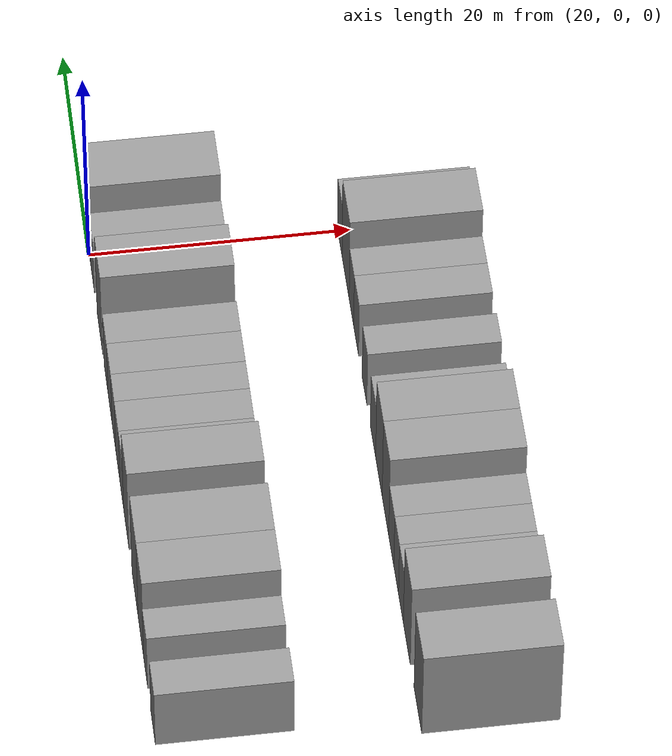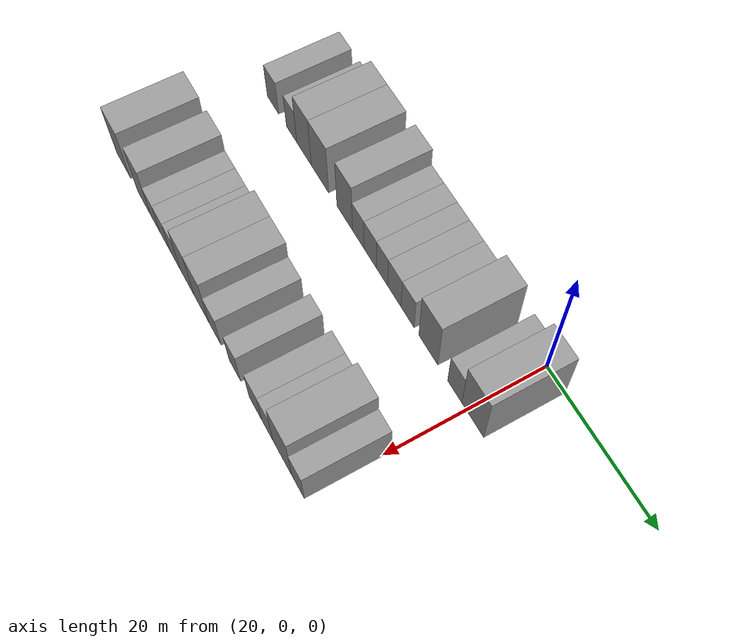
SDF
<sdf version="1.6">
 <world name="default">
  <model name="building_39">
   <static>1</static>
   <pose>25.0000 -44.3011 0 0.000000 0.000000 0.000000</pose>
   <link name="link">
    <pose>0 0 3.00 0 0 0</pose>
    <collision name="collision"><geometry><box><size>10.0000 2.9793 6.0000</size></box></geometry></collision>
    <visual name="visual">
     <cast_shadows>0</cast_shadows>
     <geometry><box><size>10.0000 2.9793 6.0000</size></box></geometry>
     <material>
      <script>
       <uri>model://grey_wall/materials/scripts</uri>
       <uri>model://grey_wall/materials/textures</uri>
       <name>vrc/grey_wall</name>
      </script>
     </material>
    </visual>
   </link>
  </model>
  <model name="building_40">
   <static>1</static>
   <pose>25.0000 -39.4788 0 0.000000 0.000000 0.000000</pose>
   <link name="link">
    <pose>0 0 3.00 0 0 0</pose>
    <collision name="collision"><geometry><box><size>10.0000 2.6652 6.0000</size></box></geometry></collision>
    <visual name="visual">
     <cast_shadows>0</cast_shadows>
     <geometry><box><size>10.0000 2.6652 6.0000</size></box></geometry>
     <material>
      <script>
       <uri>model://grey_wall/materials/scripts</uri>
       <uri>model://grey_wall/materials/textures</uri>
       <name>vrc/grey_wall</name>
      </script>
     </material>
    </visual>
   </link>
  </model>
  <model name="building_41">
   <static>1</static>
   <pose>25.0000 -36.3072 0 0.000000 0.000000 0.000000</pose>
   <link name="link">
    <pose>0 0 4.50 0 0 0</pose>
    <collision name="collision"><geometry><box><size>10.0000 3.6781 9.0000</size></box></geometry></collision>
    <visual name="visual">
     <cast_shadows>0</cast_shadows>
     <geometry><box><size>10.0000 3.6781 9.0000</size></box></geometry>
     <material>
      <script>
       <uri>model://grey_wall/materials/scripts</uri>
       <uri>model://grey_wall/materials/textures</uri>
       <name>vrc/grey_wall</name>
      </script>
     </material>
    </visual>
   </link>
  </model>
  <model name="building_42">
   <static>1</static>
   <pose>25.0000 -32.3538 0 0.000000 0.000000 0.000000</pose>
   <link name="link">
    <pose>0 0 4.50 0 0 0</pose>
    <collision name="collision"><geometry><box><size>10.0000 4.2288 9.0000</size></box></geometry></collision>
    <visual name="visual">
     <cast_shadows>0</cast_shadows>
     <geometry><box><size>10.0000 4.2288 9.0000</size></box></geometry>
     <material>
      <script>
       <uri>model://grey_wall/materials/scripts</uri>
       <uri>model://grey_wall/materials/textures</uri>
       <name>vrc/grey_wall</name>
      </script>
     </material>
    </visual>
   </link>
  </model>
  <model name="building_43">
   <static>1</static>
   <pose>25.0000 -26.3976 0 0.000000 0.000000 0.000000</pose>
   <link name="link">
    <pose>0 0 4.50 0 0 0</pose>
    <collision name="collision"><geometry><box><size>10.0000 3.6835 9.0000</size></box></geometry></collision>
    <visual name="visual">
     <cast_shadows>0</cast_shadows>
     <geometry><box><size>10.0000 3.6835 9.0000</size></box></geometry>
     <material>
      <script>
       <uri>model://grey_wall/materials/scripts</uri>
       <uri>model://grey_wall/materials/textures</uri>
       <name>vrc/grey_wall</name>
      </script>
     </material>
    </visual>
   </link>
  </model>
  <model name="building_44">
   <static>1</static>
   <pose>25.0000 -23.2192 0 0.000000 0.000000 0.000000</pose>
   <link name="link">
    <pose>0 0 3.00 0 0 0</pose>
    <collision name="collision"><geometry><box><size>10.0000 2.6733 6.0000</size></box></geometry></collision>
    <visual name="visual">
     <cast_shadows>0</cast_shadows>
     <geometry><box><size>10.0000 2.6733 6.0000</size></box></geometry>
     <material>
      <script>
       <uri>model://grey_wall/materials/scripts</uri>
       <uri>model://grey_wall/materials/textures</uri>
       <name>vrc/grey_wall</name>
      </script>
     </material>
    </visual>
   </link>
  </model>
  <model name="building_45">
   <static>1</static>
   <pose>25.0000 -20.4922 0 0.000000 0.000000 0.000000</pose>
   <link name="link">
    <pose>0 0 3.00 0 0 0</pose>
    <collision name="collision"><geometry><box><size>10.0000 2.7807 6.0000</size></box></geometry></collision>
    <visual name="visual">
     <cast_shadows>0</cast_shadows>
     <geometry><box><size>10.0000 2.7807 6.0000</size></box></geometry>
     <material>
      <script>
       <uri>model://grey_wall/materials/scripts</uri>
       <uri>model://grey_wall/materials/textures</uri>
       <name>vrc/grey_wall</name>
      </script>
     </material>
    </visual>
   </link>
  </model>
  <model name="building_46">
   <static>1</static>
   <pose>25.0000 -17.8144 0 0.000000 0.000000 0.000000</pose>
   <link name="link">
    <pose>0 0 3.00 0 0 0</pose>
    <collision name="collision"><geometry><box><size>10.0000 2.5750 6.0000</size></box></geometry></collision>
    <visual name="visual">
     <cast_shadows>0</cast_shadows>
     <geometry><box><size>10.0000 2.5750 6.0000</size></box></geometry>
     <material>
      <script>
       <uri>model://grey_wall/materials/scripts</uri>
       <uri>model://grey_wall/materials/textures</uri>
       <name>vrc/grey_wall</name>
      </script>
     </material>
    </visual>
   </link>
  </model>
  <model name="building_47">
   <static>1</static>
   <pose>25.0000 -15.0738 0 0.000000 0.000000 0.000000</pose>
   <link name="link">
    <pose>0 0 3.00 0 0 0</pose>
    <collision name="collision"><geometry><box><size>10.0000 2.9062 6.0000</size></box></geometry></collision>
    <visual name="visual">
     <cast_shadows>0</cast_shadows>
     <geometry><box><size>10.0000 2.9062 6.0000</size></box></geometry>
     <material>
      <script>
       <uri>model://grey_wall/materials/scripts</uri>
       <uri>model://grey_wall/materials/textures</uri>
       <name>vrc/grey_wall</name>
      </script>
     </material>
    </visual>
   </link>
  </model>
  <model name="building_48">
   <static>1</static>
   <pose>25.0000 -12.2017 0 0.000000 0.000000 0.000000</pose>
   <link name="link">
    <pose>0 0 3.00 0 0 0</pose>
    <collision name="collision"><geometry><box><size>10.0000 2.8381 6.0000</size></box></geometry></collision>
    <visual name="visual">
     <cast_shadows>0</cast_shadows>
     <geometry><box><size>10.0000 2.8381 6.0000</size></box></geometry>
     <material>
      <script>
       <uri>model://grey_wall/materials/scripts</uri>
       <uri>model://grey_wall/materials/textures</uri>
       <name>vrc/grey_wall</name>
      </script>
     </material>
    </visual>
   </link>
  </model>
  <model name="building_49">
   <static>1</static>
   <pose>25.0000 -7.7867 0 0.000000 0.000000 0.000000</pose>
   <link name="link">
    <pose>0 0 4.50 0 0 0</pose>
    <collision name="collision"><geometry><box><size>10.0000 3.9918 9.0000</size></box></geometry></collision>
    <visual name="visual">
     <cast_shadows>0</cast_shadows>
     <geometry><box><size>10.0000 3.9918 9.0000</size></box></geometry>
     <material>
      <script>
       <uri>model://grey_wall/materials/scripts</uri>
       <uri>model://grey_wall/materials/textures</uri>
       <name>vrc/grey_wall</name>
      </script>
     </material>
    </visual>
   </link>
  </model>
  <model name="building_50">
   <static>1</static>
   <pose>25.0000 -2.3718 0 0.000000 0.000000 0.000000</pose>
   <link name="link">
    <pose>0 0 3.00 0 0 0</pose>
    <collision name="collision"><geometry><box><size>10.0000 2.8381 6.0000</size></box></geometry></collision>
    <visual name="visual">
     <cast_shadows>0</cast_shadows>
     <geometry><box><size>10.0000 2.8381 6.0000</size></box></geometry>
     <material>
      <script>
       <uri>model://grey_wall/materials/scripts</uri>
       <uri>model://grey_wall/materials/textures</uri>
       <name>vrc/grey_wall</name>
      </script>
     </material>
    </visual>
   </link>
  </model>
  <model name="building_51">
   <static>1</static>
   <pose>25.0000 1.2269 0 0.000000 0.000000 0.000000</pose>
   <link name="link">
    <pose>0 0 4.50 0 0 0</pose>
    <collision name="collision"><geometry><box><size>10.0000 4.3593 9.0000</size></box></geometry></collision>
    <visual name="visual">
     <cast_shadows>0</cast_shadows>
     <geometry><box><size>10.0000 4.3593 9.0000</size></box></geometry>
     <material>
      <script>
       <uri>model://grey_wall/materials/scripts</uri>
       <uri>model://grey_wall/materials/textures</uri>
       <name>vrc/grey_wall</name>
      </script>
     </material>
    </visual>
   </link>
  </model>
  <model name="building_137">
   <static>1</static>
   <pose>44.0000 -45.1158 0 0.000000 0.000000 0.000000</pose>
   <link name="link">
    <pose>0 0 4.50 0 0 0</pose>
    <collision name="collision"><geometry><box><size>10.0000 4.1108 9.0000</size></box></geometry></collision>
    <visual name="visual">
     <cast_shadows>0</cast_shadows>
     <geometry><box><size>10.0000 4.1108 9.0000</size></box></geometry>
     <material>
      <script>
       <uri>model://grey_wall/materials/scripts</uri>
       <uri>model://grey_wall/materials/textures</uri>
       <name>vrc/grey_wall</name>
      </script>
     </material>
    </visual>
   </link>
  </model>
  <model name="building_138">
   <static>1</static>
   <pose>44.0000 -39.1986 0 0.000000 0.000000 0.000000</pose>
   <link name="link">
    <pose>0 0 4.50 0 0 0</pose>
    <collision name="collision"><geometry><box><size>10.0000 3.7237 9.0000</size></box></geometry></collision>
    <visual name="visual">
     <cast_shadows>0</cast_shadows>
     <geometry><box><size>10.0000 3.7237 9.0000</size></box></geometry>
     <material>
      <script>
       <uri>model://grey_wall/materials/scripts</uri>
       <uri>model://grey_wall/materials/textures</uri>
       <name>vrc/grey_wall</name>
      </script>
     </material>
    </visual>
   </link>
  </model>
  <model name="building_139">
   <static>1</static>
   <pose>44.0000 -36.0222 0 0.000000 0.000000 0.000000</pose>
   <link name="link">
    <pose>0 0 3.00 0 0 0</pose>
    <collision name="collision"><geometry><box><size>10.0000 2.6290 6.0000</size></box></geometry></collision>
    <visual name="visual">
     <cast_shadows>0</cast_shadows>
     <geometry><box><size>10.0000 2.6290 6.0000</size></box></geometry>
     <material>
      <script>
       <uri>model://grey_wall/materials/scripts</uri>
       <uri>model://grey_wall/materials/textures</uri>
       <name>vrc/grey_wall</name>
      </script>
     </material>
    </visual>
   </link>
  </model>
  <model name="building_140">
   <static>1</static>
   <pose>44.0000 -33.4312 0 0.000000 0.000000 0.000000</pose>
   <link name="link">
    <pose>0 0 3.00 0 0 0</pose>
    <collision name="collision"><geometry><box><size>10.0000 2.5530 6.0000</size></box></geometry></collision>
    <visual name="visual">
     <cast_shadows>0</cast_shadows>
     <geometry><box><size>10.0000 2.5530 6.0000</size></box></geometry>
     <material>
      <script>
       <uri>model://grey_wall/materials/scripts</uri>
       <uri>model://grey_wall/materials/textures</uri>
       <name>vrc/grey_wall</name>
      </script>
     </material>
    </visual>
   </link>
  </model>
  <model name="building_141">
   <static>1</static>
   <pose>44.0000 -30.7478 0 0.000000 0.000000 0.000000</pose>
   <link name="link">
    <pose>0 0 3.00 0 0 0</pose>
    <collision name="collision"><geometry><box><size>10.0000 2.8138 6.0000</size></box></geometry></collision>
    <visual name="visual">
     <cast_shadows>0</cast_shadows>
     <geometry><box><size>10.0000 2.8138 6.0000</size></box></geometry>
     <material>
      <script>
       <uri>model://grey_wall/materials/scripts</uri>
       <uri>model://grey_wall/materials/textures</uri>
       <name>vrc/grey_wall</name>
      </script>
     </material>
    </visual>
   </link>
  </model>
  <model name="building_142">
   <static>1</static>
   <pose>44.0000 -27.5263 0 0.000000 0.000000 0.000000</pose>
   <link name="link">
    <pose>0 0 4.50 0 0 0</pose>
    <collision name="collision"><geometry><box><size>10.0000 3.6293 9.0000</size></box></geometry></collision>
    <visual name="visual">
     <cast_shadows>0</cast_shadows>
     <geometry><box><size>10.0000 3.6293 9.0000</size></box></geometry>
     <material>
      <script>
       <uri>model://grey_wall/materials/scripts</uri>
       <uri>model://grey_wall/materials/textures</uri>
       <name>vrc/grey_wall</name>
      </script>
     </material>
    </visual>
   </link>
  </model>
  <model name="building_143">
   <static>1</static>
   <pose>44.0000 -23.8797 0 0.000000 0.000000 0.000000</pose>
   <link name="link">
    <pose>0 0 4.50 0 0 0</pose>
    <collision name="collision"><geometry><box><size>10.0000 3.6639 9.0000</size></box></geometry></collision>
    <visual name="visual">
     <cast_shadows>0</cast_shadows>
     <geometry><box><size>10.0000 3.6639 9.0000</size></box></geometry>
     <material>
      <script>
       <uri>model://grey_wall/materials/scripts</uri>
       <uri>model://grey_wall/materials/textures</uri>
       <name>vrc/grey_wall</name>
      </script>
     </material>
    </visual>
   </link>
  </model>
  <model name="building_144">
   <static>1</static>
   <pose>44.0000 -20.5479 0 0.000000 0.000000 0.000000</pose>
   <link name="link">
    <pose>0 0 3.00 0 0 0</pose>
    <collision name="collision"><geometry><box><size>10.0000 2.9996 6.0000</size></box></geometry></collision>
    <visual name="visual">
     <cast_shadows>0</cast_shadows>
     <geometry><box><size>10.0000 2.9996 6.0000</size></box></geometry>
     <material>
      <script>
       <uri>model://grey_wall/materials/scripts</uri>
       <uri>model://grey_wall/materials/textures</uri>
       <name>vrc/grey_wall</name>
      </script>
     </material>
    </visual>
   </link>
  </model>
  <model name="building_145">
   <static>1</static>
   <pose>44.0000 -15.6844 0 0.000000 0.000000 0.000000</pose>
   <link name="link">
    <pose>0 0 3.00 0 0 0</pose>
    <collision name="collision"><geometry><box><size>10.0000 2.7273 6.0000</size></box></geometry></collision>
    <visual name="visual">
     <cast_shadows>0</cast_shadows>
     <geometry><box><size>10.0000 2.7273 6.0000</size></box></geometry>
     <material>
      <script>
       <uri>model://grey_wall/materials/scripts</uri>
       <uri>model://grey_wall/materials/textures</uri>
       <name>vrc/grey_wall</name>
      </script>
     </material>
    </visual>
   </link>
  </model>
  <model name="building_146">
   <static>1</static>
   <pose>44.0000 -10.8806 0 0.000000 0.000000 0.000000</pose>
   <link name="link">
    <pose>0 0 3.00 0 0 0</pose>
    <collision name="collision"><geometry><box><size>10.0000 2.8803 6.0000</size></box></geometry></collision>
    <visual name="visual">
     <cast_shadows>0</cast_shadows>
     <geometry><box><size>10.0000 2.8803 6.0000</size></box></geometry>
     <material>
      <script>
       <uri>model://grey_wall/materials/scripts</uri>
       <uri>model://grey_wall/materials/textures</uri>
       <name>vrc/grey_wall</name>
      </script>
     </material>
    </visual>
   </link>
  </model>
  <model name="building_147">
   <static>1</static>
   <pose>44.0000 -8.1251 0 0.000000 0.000000 0.000000</pose>
   <link name="link">
    <pose>0 0 3.00 0 0 0</pose>
    <collision name="collision"><geometry><box><size>10.0000 2.6308 6.0000</size></box></geometry></collision>
    <visual name="visual">
     <cast_shadows>0</cast_shadows>
     <geometry><box><size>10.0000 2.6308 6.0000</size></box></geometry>
     <material>
      <script>
       <uri>model://grey_wall/materials/scripts</uri>
       <uri>model://grey_wall/materials/textures</uri>
       <name>vrc/grey_wall</name>
      </script>
     </material>
    </visual>
   </link>
  </model>
  <model name="building_148">
   <static>1</static>
   <pose>44.0000 -4.7288 0 0.000000 0.000000 0.000000</pose>
   <link name="link">
    <pose>0 0 4.50 0 0 0</pose>
    <collision name="collision"><geometry><box><size>10.0000 4.1620 9.0000</size></box></geometry></collision>
    <visual name="visual">
     <cast_shadows>0</cast_shadows>
     <geometry><box><size>10.0000 4.1620 9.0000</size></box></geometry>
     <material>
      <script>
       <uri>model://grey_wall/materials/scripts</uri>
       <uri>model://grey_wall/materials/textures</uri>
       <name>vrc/grey_wall</name>
      </script>
     </material>
    </visual>
   </link>
  </model>
  <model name="building_149">
   <static>1</static>
   <pose>44.0000 -1.2908 0 0.000000 0.000000 0.000000</pose>
   <link name="link">
    <pose>0 0 3.00 0 0 0</pose>
    <collision name="collision"><geometry><box><size>10.0000 2.7140 6.0000</size></box></geometry></collision>
    <visual name="visual">
     <cast_shadows>0</cast_shadows>
     <geometry><box><size>10.0000 2.7140 6.0000</size></box></geometry>
     <material>
      <script>
       <uri>model://grey_wall/materials/scripts</uri>
       <uri>model://grey_wall/materials/textures</uri>
       <name>vrc/grey_wall</name>
      </script>
     </material>
    </visual>
   </link>
  </model>
 </world>
</sdf>
